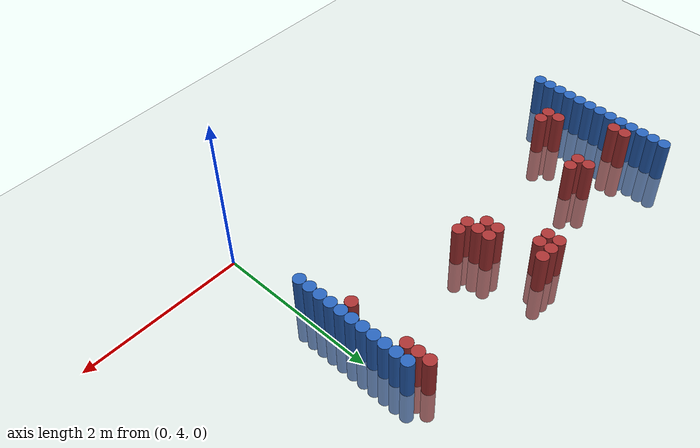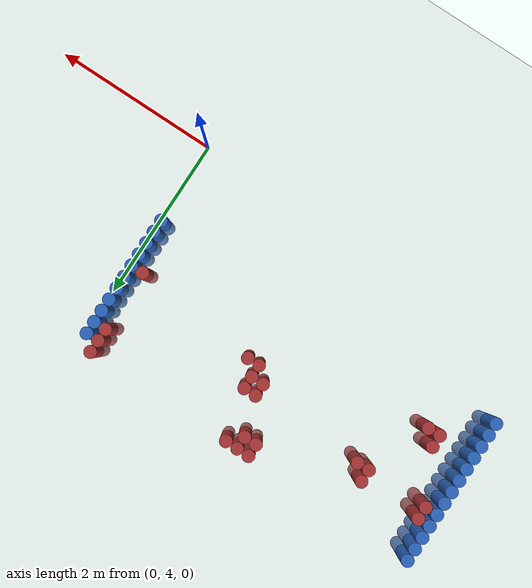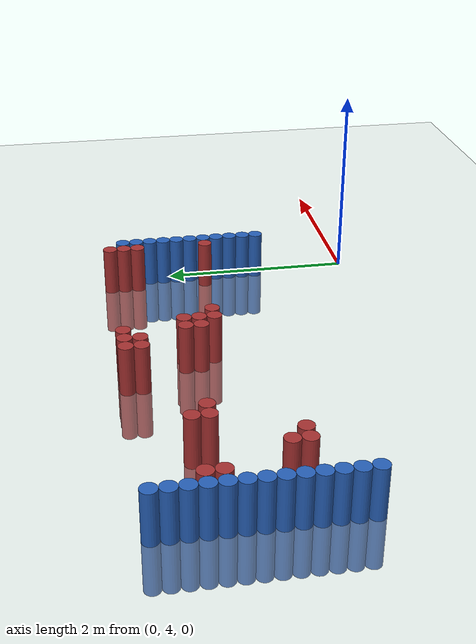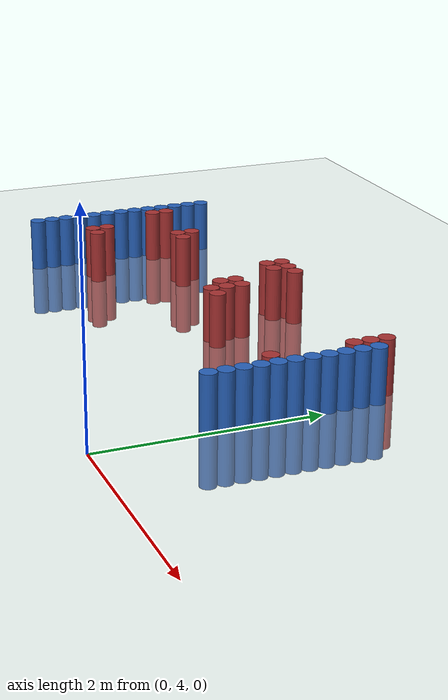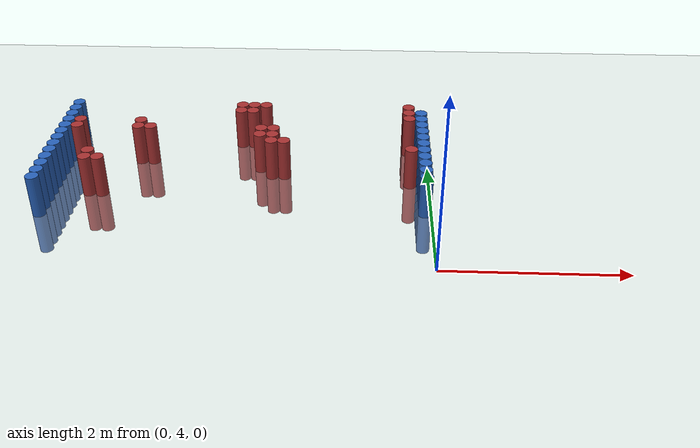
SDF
<sdf version="1.6">
 <world name="default">
  <model name="ground_plane">
   <static>1</static>
   <link name="link">
    <collision name="collision">
     <geometry><plane><normal>0 0 1</normal><size>100 100</size></plane></geometry>
     <surface><friction><ode><mu>100</mu><mu2>50</mu2></ode></friction></surface>
    </collision>
    <visual name="visual">
     <cast_shadows>0</cast_shadows>
     <geometry><plane><normal>0 0 1</normal><size>100 100</size></plane></geometry>
     <material>
      <script><uri>file://media/materials/scripts/gazebo.material</uri><name>Gazebo/Grey</name></script>
     </material>
    </visual>
   </link>
  </model>
  <model name="unit_cylinder_93">
   <static>1</static>
   <pose>-4.425000 4.875000 0.000000 0.000000 0.000000 0.000000</pose>
   <link name="link">
    <inertial>
     <mass>1</mass>
     <inertia><ixx>0.145833</ixx><ixy>0</ixy><ixz>0</ixz><iyy>0.145833</iyy><iyz>0</iyz><izz>0.125</izz></inertia>
    </inertial>
    <collision name="collision">
     <geometry><cylinder><radius>0.075000</radius><length>1</length></cylinder></geometry>
    </collision>
    <visual name="visual">
     <geometry><cylinder><radius>0.075000</radius><length>1</length></cylinder></geometry>
     <material>
      <ambient>0.152000 0.379000 0.720000 1</ambient>
      <diffuse>0.152000 0.379000 0.720000 1</diffuse>
     </material>
     <material>
      <script><name>Gazebo/Grey</name><uri>file://media/materials/scripts/gazebo.material</uri></script>
     </material>
    </visual>
   </link>
  </model>
  <model name="unit_cylinder_94">
   <static>1</static>
   <pose>-0.075000 5.025000 0.000000 0.000000 0.000000 0.000000</pose>
   <link name="link">
    <inertial>
     <mass>1</mass>
     <inertia><ixx>0.145833</ixx><ixy>0</ixy><ixz>0</ixz><iyy>0.145833</iyy><iyz>0</iyz><izz>0.125</izz></inertia>
    </inertial>
    <collision name="collision">
     <geometry><cylinder><radius>0.075000</radius><length>1</length></cylinder></geometry>
    </collision>
    <visual name="visual">
     <geometry><cylinder><radius>0.075000</radius><length>1</length></cylinder></geometry>
     <material>
      <ambient>0.152000 0.379000 0.720000 1</ambient>
      <diffuse>0.152000 0.379000 0.720000 1</diffuse>
     </material>
     <material>
      <script><name>Gazebo/Grey</name><uri>file://media/materials/scripts/gazebo.material</uri></script>
     </material>
    </visual>
   </link>
  </model>
  <model name="unit_cylinder_95">
   <static>1</static>
   <pose>-4.425000 5.025000 0.000000 0.000000 0.000000 0.000000</pose>
   <link name="link">
    <inertial>
     <mass>1</mass>
     <inertia><ixx>0.145833</ixx><ixy>0</ixy><ixz>0</ixz><iyy>0.145833</iyy><iyz>0</iyz><izz>0.125</izz></inertia>
    </inertial>
    <collision name="collision">
     <geometry><cylinder><radius>0.075000</radius><length>1</length></cylinder></geometry>
    </collision>
    <visual name="visual">
     <geometry><cylinder><radius>0.075000</radius><length>1</length></cylinder></geometry>
     <material>
      <ambient>0.152000 0.379000 0.720000 1</ambient>
      <diffuse>0.152000 0.379000 0.720000 1</diffuse>
     </material>
     <material>
      <script><name>Gazebo/Grey</name><uri>file://media/materials/scripts/gazebo.material</uri></script>
     </material>
    </visual>
   </link>
  </model>
  <model name="unit_cylinder_96">
   <static>1</static>
   <pose>-4.425000 5.175000 0.000000 0.000000 0.000000 0.000000</pose>
   <link name="link">
    <inertial>
     <mass>1</mass>
     <inertia><ixx>0.145833</ixx><ixy>0</ixy><ixz>0</ixz><iyy>0.145833</iyy><iyz>0</iyz><izz>0.125</izz></inertia>
    </inertial>
    <collision name="collision">
     <geometry><cylinder><radius>0.075000</radius><length>1</length></cylinder></geometry>
    </collision>
    <visual name="visual">
     <geometry><cylinder><radius>0.075000</radius><length>1</length></cylinder></geometry>
     <material>
      <ambient>0.152000 0.379000 0.720000 1</ambient>
      <diffuse>0.152000 0.379000 0.720000 1</diffuse>
     </material>
     <material>
      <script><name>Gazebo/Grey</name><uri>file://media/materials/scripts/gazebo.material</uri></script>
     </material>
    </visual>
   </link>
  </model>
  <model name="unit_cylinder_97">
   <static>1</static>
   <pose>-4.425000 5.325000 0.000000 0.000000 0.000000 0.000000</pose>
   <link name="link">
    <inertial>
     <mass>1</mass>
     <inertia><ixx>0.145833</ixx><ixy>0</ixy><ixz>0</ixz><iyy>0.145833</iyy><iyz>0</iyz><izz>0.125</izz></inertia>
    </inertial>
    <collision name="collision">
     <geometry><cylinder><radius>0.075000</radius><length>1</length></cylinder></geometry>
    </collision>
    <visual name="visual">
     <geometry><cylinder><radius>0.075000</radius><length>1</length></cylinder></geometry>
     <material>
      <ambient>0.152000 0.379000 0.720000 1</ambient>
      <diffuse>0.152000 0.379000 0.720000 1</diffuse>
     </material>
     <material>
      <script><name>Gazebo/Grey</name><uri>file://media/materials/scripts/gazebo.material</uri></script>
     </material>
    </visual>
   </link>
  </model>
  <model name="unit_cylinder_98">
   <static>1</static>
   <pose>-4.425000 5.475000 0.000000 0.000000 0.000000 0.000000</pose>
   <link name="link">
    <inertial>
     <mass>1</mass>
     <inertia><ixx>0.145833</ixx><ixy>0</ixy><ixz>0</ixz><iyy>0.145833</iyy><iyz>0</iyz><izz>0.125</izz></inertia>
    </inertial>
    <collision name="collision">
     <geometry><cylinder><radius>0.075000</radius><length>1</length></cylinder></geometry>
    </collision>
    <visual name="visual">
     <geometry><cylinder><radius>0.075000</radius><length>1</length></cylinder></geometry>
     <material>
      <ambient>0.152000 0.379000 0.720000 1</ambient>
      <diffuse>0.152000 0.379000 0.720000 1</diffuse>
     </material>
     <material>
      <script><name>Gazebo/Grey</name><uri>file://media/materials/scripts/gazebo.material</uri></script>
     </material>
    </visual>
   </link>
  </model>
  <model name="unit_cylinder_99">
   <static>1</static>
   <pose>-4.425000 5.625000 0.000000 0.000000 0.000000 0.000000</pose>
   <link name="link">
    <inertial>
     <mass>1</mass>
     <inertia><ixx>0.145833</ixx><ixy>0</ixy><ixz>0</ixz><iyy>0.145833</iyy><iyz>0</iyz><izz>0.125</izz></inertia>
    </inertial>
    <collision name="collision">
     <geometry><cylinder><radius>0.075000</radius><length>1</length></cylinder></geometry>
    </collision>
    <visual name="visual">
     <geometry><cylinder><radius>0.075000</radius><length>1</length></cylinder></geometry>
     <material>
      <ambient>0.152000 0.379000 0.720000 1</ambient>
      <diffuse>0.152000 0.379000 0.720000 1</diffuse>
     </material>
     <material>
      <script><name>Gazebo/Grey</name><uri>file://media/materials/scripts/gazebo.material</uri></script>
     </material>
    </visual>
   </link>
  </model>
  <model name="unit_cylinder_100">
   <static>1</static>
   <pose>-4.425000 5.775000 0.000000 0.000000 0.000000 0.000000</pose>
   <link name="link">
    <inertial>
     <mass>1</mass>
     <inertia><ixx>0.145833</ixx><ixy>0</ixy><ixz>0</ixz><iyy>0.145833</iyy><iyz>0</iyz><izz>0.125</izz></inertia>
    </inertial>
    <collision name="collision">
     <geometry><cylinder><radius>0.075000</radius><length>1</length></cylinder></geometry>
    </collision>
    <visual name="visual">
     <geometry><cylinder><radius>0.075000</radius><length>1</length></cylinder></geometry>
     <material>
      <ambient>0.152000 0.379000 0.720000 1</ambient>
      <diffuse>0.152000 0.379000 0.720000 1</diffuse>
     </material>
     <material>
      <script><name>Gazebo/Grey</name><uri>file://media/materials/scripts/gazebo.material</uri></script>
     </material>
    </visual>
   </link>
  </model>
  <model name="unit_cylinder_101">
   <static>1</static>
   <pose>-4.425000 5.925000 0.000000 0.000000 0.000000 0.000000</pose>
   <link name="link">
    <inertial>
     <mass>1</mass>
     <inertia><ixx>0.145833</ixx><ixy>0</ixy><ixz>0</ixz><iyy>0.145833</iyy><iyz>0</iyz><izz>0.125</izz></inertia>
    </inertial>
    <collision name="collision">
     <geometry><cylinder><radius>0.075000</radius><length>1</length></cylinder></geometry>
    </collision>
    <visual name="visual">
     <geometry><cylinder><radius>0.075000</radius><length>1</length></cylinder></geometry>
     <material>
      <ambient>0.152000 0.379000 0.720000 1</ambient>
      <diffuse>0.152000 0.379000 0.720000 1</diffuse>
     </material>
     <material>
      <script><name>Gazebo/Grey</name><uri>file://media/materials/scripts/gazebo.material</uri></script>
     </material>
    </visual>
   </link>
  </model>
  <model name="unit_cylinder_102">
   <static>1</static>
   <pose>-4.425000 6.075000 0.000000 0.000000 0.000000 0.000000</pose>
   <link name="link">
    <inertial>
     <mass>1</mass>
     <inertia><ixx>0.145833</ixx><ixy>0</ixy><ixz>0</ixz><iyy>0.145833</iyy><iyz>0</iyz><izz>0.125</izz></inertia>
    </inertial>
    <collision name="collision">
     <geometry><cylinder><radius>0.075000</radius><length>1</length></cylinder></geometry>
    </collision>
    <visual name="visual">
     <geometry><cylinder><radius>0.075000</radius><length>1</length></cylinder></geometry>
     <material>
      <ambient>0.152000 0.379000 0.720000 1</ambient>
      <diffuse>0.152000 0.379000 0.720000 1</diffuse>
     </material>
     <material>
      <script><name>Gazebo/Grey</name><uri>file://media/materials/scripts/gazebo.material</uri></script>
     </material>
    </visual>
   </link>
  </model>
  <model name="unit_cylinder_103">
   <static>1</static>
   <pose>-4.425000 6.225000 0.000000 0.000000 0.000000 0.000000</pose>
   <link name="link">
    <inertial>
     <mass>1</mass>
     <inertia><ixx>0.145833</ixx><ixy>0</ixy><ixz>0</ixz><iyy>0.145833</iyy><iyz>0</iyz><izz>0.125</izz></inertia>
    </inertial>
    <collision name="collision">
     <geometry><cylinder><radius>0.075000</radius><length>1</length></cylinder></geometry>
    </collision>
    <visual name="visual">
     <geometry><cylinder><radius>0.075000</radius><length>1</length></cylinder></geometry>
     <material>
      <ambient>0.152000 0.379000 0.720000 1</ambient>
      <diffuse>0.152000 0.379000 0.720000 1</diffuse>
     </material>
     <material>
      <script><name>Gazebo/Grey</name><uri>file://media/materials/scripts/gazebo.material</uri></script>
     </material>
    </visual>
   </link>
  </model>
  <model name="unit_cylinder_104">
   <static>1</static>
   <pose>-4.425000 6.375000 0.000000 0.000000 0.000000 0.000000</pose>
   <link name="link">
    <inertial>
     <mass>1</mass>
     <inertia><ixx>0.145833</ixx><ixy>0</ixy><ixz>0</ixz><iyy>0.145833</iyy><iyz>0</iyz><izz>0.125</izz></inertia>
    </inertial>
    <collision name="collision">
     <geometry><cylinder><radius>0.075000</radius><length>1</length></cylinder></geometry>
    </collision>
    <visual name="visual">
     <geometry><cylinder><radius>0.075000</radius><length>1</length></cylinder></geometry>
     <material>
      <ambient>0.152000 0.379000 0.720000 1</ambient>
      <diffuse>0.152000 0.379000 0.720000 1</diffuse>
     </material>
     <material>
      <script><name>Gazebo/Grey</name><uri>file://media/materials/scripts/gazebo.material</uri></script>
     </material>
    </visual>
   </link>
  </model>
  <model name="unit_cylinder_105">
   <static>1</static>
   <pose>-4.425000 6.525000 0.000000 0.000000 0.000000 0.000000</pose>
   <link name="link">
    <inertial>
     <mass>1</mass>
     <inertia><ixx>0.145833</ixx><ixy>0</ixy><ixz>0</ixz><iyy>0.145833</iyy><iyz>0</iyz><izz>0.125</izz></inertia>
    </inertial>
    <collision name="collision">
     <geometry><cylinder><radius>0.075000</radius><length>1</length></cylinder></geometry>
    </collision>
    <visual name="visual">
     <geometry><cylinder><radius>0.075000</radius><length>1</length></cylinder></geometry>
     <material>
      <ambient>0.152000 0.379000 0.720000 1</ambient>
      <diffuse>0.152000 0.379000 0.720000 1</diffuse>
     </material>
     <material>
      <script><name>Gazebo/Grey</name><uri>file://media/materials/scripts/gazebo.material</uri></script>
     </material>
    </visual>
   </link>
  </model>
  <model name="unit_cylinder_106">
   <static>1</static>
   <pose>-4.425000 6.675000 0.000000 0.000000 0.000000 0.000000</pose>
   <link name="link">
    <inertial>
     <mass>1</mass>
     <inertia><ixx>0.145833</ixx><ixy>0</ixy><ixz>0</ixz><iyy>0.145833</iyy><iyz>0</iyz><izz>0.125</izz></inertia>
    </inertial>
    <collision name="collision">
     <geometry><cylinder><radius>0.075000</radius><length>1</length></cylinder></geometry>
    </collision>
    <visual name="visual">
     <geometry><cylinder><radius>0.075000</radius><length>1</length></cylinder></geometry>
     <material>
      <ambient>0.152000 0.379000 0.720000 1</ambient>
      <diffuse>0.152000 0.379000 0.720000 1</diffuse>
     </material>
     <material>
      <script><name>Gazebo/Grey</name><uri>file://media/materials/scripts/gazebo.material</uri></script>
     </material>
    </visual>
   </link>
  </model>
  <model name="unit_cylinder_126">
   <static>1</static>
   <pose>-4.275000 6.075000 0.000000 0.000000 0.000000 0.000000</pose>
   <link name="link">
    <inertial>
     <mass>1</mass>
     <inertia><ixx>0.145833</ixx><ixy>0</ixy><ixz>0</ixz><iyy>0.145833</iyy><iyz>0</iyz><izz>0.125</izz></inertia>
    </inertial>
    <collision name="collision">
     <geometry><cylinder><radius>0.075000</radius><length>1</length></cylinder></geometry>
    </collision>
    <visual name="visual">
     <geometry><cylinder><radius>0.075000</radius><length>1</length></cylinder></geometry>
     <material>
      <ambient>0.648000 0.192000 0.192000 1</ambient>
      <diffuse>0.648000 0.192000 0.192000 1</diffuse>
     </material>
     <material>
      <script><name>Gazebo/Grey</name><uri>file://media/materials/scripts/gazebo.material</uri></script>
     </material>
    </visual>
   </link>
  </model>
  <model name="unit_cylinder_127">
   <static>1</static>
   <pose>-4.275000 6.225000 0.000000 0.000000 0.000000 0.000000</pose>
   <link name="link">
    <inertial>
     <mass>1</mass>
     <inertia><ixx>0.145833</ixx><ixy>0</ixy><ixz>0</ixz><iyy>0.145833</iyy><iyz>0</iyz><izz>0.125</izz></inertia>
    </inertial>
    <collision name="collision">
     <geometry><cylinder><radius>0.075000</radius><length>1</length></cylinder></geometry>
    </collision>
    <visual name="visual">
     <geometry><cylinder><radius>0.075000</radius><length>1</length></cylinder></geometry>
     <material>
      <ambient>0.648000 0.192000 0.192000 1</ambient>
      <diffuse>0.648000 0.192000 0.192000 1</diffuse>
     </material>
     <material>
      <script><name>Gazebo/Grey</name><uri>file://media/materials/scripts/gazebo.material</uri></script>
     </material>
    </visual>
   </link>
  </model>
  <model name="unit_cylinder_142">
   <static>1</static>
   <pose>-3.975000 5.325000 0.000000 0.000000 0.000000 0.000000</pose>
   <link name="link">
    <inertial>
     <mass>1</mass>
     <inertia><ixx>0.145833</ixx><ixy>0</ixy><ixz>0</ixz><iyy>0.145833</iyy><iyz>0</iyz><izz>0.125</izz></inertia>
    </inertial>
    <collision name="collision">
     <geometry><cylinder><radius>0.075000</radius><length>1</length></cylinder></geometry>
    </collision>
    <visual name="visual">
     <geometry><cylinder><radius>0.075000</radius><length>1</length></cylinder></geometry>
     <material>
      <ambient>0.648000 0.192000 0.192000 1</ambient>
      <diffuse>0.648000 0.192000 0.192000 1</diffuse>
     </material>
     <material>
      <script><name>Gazebo/Grey</name><uri>file://media/materials/scripts/gazebo.material</uri></script>
     </material>
    </visual>
   </link>
  </model>
  <model name="unit_cylinder_143">
   <static>1</static>
   <pose>-3.975000 5.475000 0.000000 0.000000 0.000000 0.000000</pose>
   <link name="link">
    <inertial>
     <mass>1</mass>
     <inertia><ixx>0.145833</ixx><ixy>0</ixy><ixz>0</ixz><iyy>0.145833</iyy><iyz>0</iyz><izz>0.125</izz></inertia>
    </inertial>
    <collision name="collision">
     <geometry><cylinder><radius>0.075000</radius><length>1</length></cylinder></geometry>
    </collision>
    <visual name="visual">
     <geometry><cylinder><radius>0.075000</radius><length>1</length></cylinder></geometry>
     <material>
      <ambient>0.648000 0.192000 0.192000 1</ambient>
      <diffuse>0.648000 0.192000 0.192000 1</diffuse>
     </material>
     <material>
      <script><name>Gazebo/Grey</name><uri>file://media/materials/scripts/gazebo.material</uri></script>
     </material>
    </visual>
   </link>
  </model>
  <model name="unit_cylinder_146">
   <static>1</static>
   <pose>-3.825000 5.325000 0.000000 0.000000 0.000000 0.000000</pose>
   <link name="link">
    <inertial>
     <mass>1</mass>
     <inertia><ixx>0.145833</ixx><ixy>0</ixy><ixz>0</ixz><iyy>0.145833</iyy><iyz>0</iyz><izz>0.125</izz></inertia>
    </inertial>
    <collision name="collision">
     <geometry><cylinder><radius>0.075000</radius><length>1</length></cylinder></geometry>
    </collision>
    <visual name="visual">
     <geometry><cylinder><radius>0.075000</radius><length>1</length></cylinder></geometry>
     <material>
      <ambient>0.648000 0.192000 0.192000 1</ambient>
      <diffuse>0.648000 0.192000 0.192000 1</diffuse>
     </material>
     <material>
      <script><name>Gazebo/Grey</name><uri>file://media/materials/scripts/gazebo.material</uri></script>
     </material>
    </visual>
   </link>
  </model>
  <model name="unit_cylinder_147">
   <static>1</static>
   <pose>-3.525000 6.075000 0.000000 0.000000 0.000000 0.000000</pose>
   <link name="link">
    <inertial>
     <mass>1</mass>
     <inertia><ixx>0.145833</ixx><ixy>0</ixy><ixz>0</ixz><iyy>0.145833</iyy><iyz>0</iyz><izz>0.125</izz></inertia>
    </inertial>
    <collision name="collision">
     <geometry><cylinder><radius>0.075000</radius><length>1</length></cylinder></geometry>
    </collision>
    <visual name="visual">
     <geometry><cylinder><radius>0.075000</radius><length>1</length></cylinder></geometry>
     <material>
      <ambient>0.648000 0.192000 0.192000 1</ambient>
      <diffuse>0.648000 0.192000 0.192000 1</diffuse>
     </material>
     <material>
      <script><name>Gazebo/Grey</name><uri>file://media/materials/scripts/gazebo.material</uri></script>
     </material>
    </visual>
   </link>
  </model>
  <model name="unit_cylinder_148">
   <static>1</static>
   <pose>-3.525000 6.225000 0.000000 0.000000 0.000000 0.000000</pose>
   <link name="link">
    <inertial>
     <mass>1</mass>
     <inertia><ixx>0.145833</ixx><ixy>0</ixy><ixz>0</ixz><iyy>0.145833</iyy><iyz>0</iyz><izz>0.125</izz></inertia>
    </inertial>
    <collision name="collision">
     <geometry><cylinder><radius>0.075000</radius><length>1</length></cylinder></geometry>
    </collision>
    <visual name="visual">
     <geometry><cylinder><radius>0.075000</radius><length>1</length></cylinder></geometry>
     <material>
      <ambient>0.648000 0.192000 0.192000 1</ambient>
      <diffuse>0.648000 0.192000 0.192000 1</diffuse>
     </material>
     <material>
      <script><name>Gazebo/Grey</name><uri>file://media/materials/scripts/gazebo.material</uri></script>
     </material>
    </visual>
   </link>
  </model>
  <model name="unit_cylinder_149">
   <static>1</static>
   <pose>-3.375000 6.075000 0.000000 0.000000 0.000000 0.000000</pose>
   <link name="link">
    <inertial>
     <mass>1</mass>
     <inertia><ixx>0.145833</ixx><ixy>0</ixy><ixz>0</ixz><iyy>0.145833</iyy><iyz>0</iyz><izz>0.125</izz></inertia>
    </inertial>
    <collision name="collision">
     <geometry><cylinder><radius>0.075000</radius><length>1</length></cylinder></geometry>
    </collision>
    <visual name="visual">
     <geometry><cylinder><radius>0.075000</radius><length>1</length></cylinder></geometry>
     <material>
      <ambient>0.648000 0.192000 0.192000 1</ambient>
      <diffuse>0.648000 0.192000 0.192000 1</diffuse>
     </material>
     <material>
      <script><name>Gazebo/Grey</name><uri>file://media/materials/scripts/gazebo.material</uri></script>
     </material>
    </visual>
   </link>
  </model>
  <model name="unit_cylinder_156">
   <static>1</static>
   <pose>-2.325000 6.525000 0.000000 0.000000 0.000000 0.000000</pose>
   <link name="link">
    <inertial>
     <mass>1</mass>
     <inertia><ixx>0.145833</ixx><ixy>0</ixy><ixz>0</ixz><iyy>0.145833</iyy><iyz>0</iyz><izz>0.125</izz></inertia>
    </inertial>
    <collision name="collision">
     <geometry><cylinder><radius>0.075000</radius><length>1</length></cylinder></geometry>
    </collision>
    <visual name="visual">
     <geometry><cylinder><radius>0.075000</radius><length>1</length></cylinder></geometry>
     <material>
      <ambient>0.648000 0.192000 0.192000 1</ambient>
      <diffuse>0.648000 0.192000 0.192000 1</diffuse>
     </material>
     <material>
      <script><name>Gazebo/Grey</name><uri>file://media/materials/scripts/gazebo.material</uri></script>
     </material>
    </visual>
   </link>
  </model>
  <model name="unit_cylinder_157">
   <static>1</static>
   <pose>-2.325000 6.675000 0.000000 0.000000 0.000000 0.000000</pose>
   <link name="link">
    <inertial>
     <mass>1</mass>
     <inertia><ixx>0.145833</ixx><ixy>0</ixy><ixz>0</ixz><iyy>0.145833</iyy><iyz>0</iyz><izz>0.125</izz></inertia>
    </inertial>
    <collision name="collision">
     <geometry><cylinder><radius>0.075000</radius><length>1</length></cylinder></geometry>
    </collision>
    <visual name="visual">
     <geometry><cylinder><radius>0.075000</radius><length>1</length></cylinder></geometry>
     <material>
      <ambient>0.648000 0.192000 0.192000 1</ambient>
      <diffuse>0.648000 0.192000 0.192000 1</diffuse>
     </material>
     <material>
      <script><name>Gazebo/Grey</name><uri>file://media/materials/scripts/gazebo.material</uri></script>
     </material>
    </visual>
   </link>
  </model>
  <model name="unit_cylinder_159">
   <static>1</static>
   <pose>-2.175000 6.525000 0.000000 0.000000 0.000000 0.000000</pose>
   <link name="link">
    <inertial>
     <mass>1</mass>
     <inertia><ixx>0.145833</ixx><ixy>0</ixy><ixz>0</ixz><iyy>0.145833</iyy><iyz>0</iyz><izz>0.125</izz></inertia>
    </inertial>
    <collision name="collision">
     <geometry><cylinder><radius>0.075000</radius><length>1</length></cylinder></geometry>
    </collision>
    <visual name="visual">
     <geometry><cylinder><radius>0.075000</radius><length>1</length></cylinder></geometry>
     <material>
      <ambient>0.648000 0.192000 0.192000 1</ambient>
      <diffuse>0.648000 0.192000 0.192000 1</diffuse>
     </material>
     <material>
      <script><name>Gazebo/Grey</name><uri>file://media/materials/scripts/gazebo.material</uri></script>
     </material>
    </visual>
   </link>
  </model>
  <model name="unit_cylinder_160">
   <static>1</static>
   <pose>-2.175000 6.675000 0.000000 0.000000 0.000000 0.000000</pose>
   <link name="link">
    <inertial>
     <mass>1</mass>
     <inertia><ixx>0.145833</ixx><ixy>0</ixy><ixz>0</ixz><iyy>0.145833</iyy><iyz>0</iyz><izz>0.125</izz></inertia>
    </inertial>
    <collision name="collision">
     <geometry><cylinder><radius>0.075000</radius><length>1</length></cylinder></geometry>
    </collision>
    <visual name="visual">
     <geometry><cylinder><radius>0.075000</radius><length>1</length></cylinder></geometry>
     <material>
      <ambient>0.648000 0.192000 0.192000 1</ambient>
      <diffuse>0.648000 0.192000 0.192000 1</diffuse>
     </material>
     <material>
      <script><name>Gazebo/Grey</name><uri>file://media/materials/scripts/gazebo.material</uri></script>
     </material>
    </visual>
   </link>
  </model>
  <model name="unit_cylinder_166">
   <static>1</static>
   <pose>-2.025000 5.925000 0.000000 0.000000 0.000000 0.000000</pose>
   <link name="link">
    <inertial>
     <mass>1</mass>
     <inertia><ixx>0.145833</ixx><ixy>0</ixy><ixz>0</ixz><iyy>0.145833</iyy><iyz>0</iyz><izz>0.125</izz></inertia>
    </inertial>
    <collision name="collision">
     <geometry><cylinder><radius>0.075000</radius><length>1</length></cylinder></geometry>
    </collision>
    <visual name="visual">
     <geometry><cylinder><radius>0.075000</radius><length>1</length></cylinder></geometry>
     <material>
      <ambient>0.648000 0.192000 0.192000 1</ambient>
      <diffuse>0.648000 0.192000 0.192000 1</diffuse>
     </material>
     <material>
      <script><name>Gazebo/Grey</name><uri>file://media/materials/scripts/gazebo.material</uri></script>
     </material>
    </visual>
   </link>
  </model>
  <model name="unit_cylinder_167">
   <static>1</static>
   <pose>-2.025000 6.075000 0.000000 0.000000 0.000000 0.000000</pose>
   <link name="link">
    <inertial>
     <mass>1</mass>
     <inertia><ixx>0.145833</ixx><ixy>0</ixy><ixz>0</ixz><iyy>0.145833</iyy><iyz>0</iyz><izz>0.125</izz></inertia>
    </inertial>
    <collision name="collision">
     <geometry><cylinder><radius>0.075000</radius><length>1</length></cylinder></geometry>
    </collision>
    <visual name="visual">
     <geometry><cylinder><radius>0.075000</radius><length>1</length></cylinder></geometry>
     <material>
      <ambient>0.648000 0.192000 0.192000 1</ambient>
      <diffuse>0.648000 0.192000 0.192000 1</diffuse>
     </material>
     <material>
      <script><name>Gazebo/Grey</name><uri>file://media/materials/scripts/gazebo.material</uri></script>
     </material>
    </visual>
   </link>
  </model>
  <model name="unit_cylinder_168">
   <static>1</static>
   <pose>-2.025000 6.675000 0.000000 0.000000 0.000000 0.000000</pose>
   <link name="link">
    <inertial>
     <mass>1</mass>
     <inertia><ixx>0.145833</ixx><ixy>0</ixy><ixz>0</ixz><iyy>0.145833</iyy><iyz>0</iyz><izz>0.125</izz></inertia>
    </inertial>
    <collision name="collision">
     <geometry><cylinder><radius>0.075000</radius><length>1</length></cylinder></geometry>
    </collision>
    <visual name="visual">
     <geometry><cylinder><radius>0.075000</radius><length>1</length></cylinder></geometry>
     <material>
      <ambient>0.648000 0.192000 0.192000 1</ambient>
      <diffuse>0.648000 0.192000 0.192000 1</diffuse>
     </material>
     <material>
      <script><name>Gazebo/Grey</name><uri>file://media/materials/scripts/gazebo.material</uri></script>
     </material>
    </visual>
   </link>
  </model>
  <model name="unit_cylinder_173">
   <static>1</static>
   <pose>-1.875000 5.775000 0.000000 0.000000 0.000000 0.000000</pose>
   <link name="link">
    <inertial>
     <mass>1</mass>
     <inertia><ixx>0.145833</ixx><ixy>0</ixy><ixz>0</ixz><iyy>0.145833</iyy><iyz>0</iyz><izz>0.125</izz></inertia>
    </inertial>
    <collision name="collision">
     <geometry><cylinder><radius>0.075000</radius><length>1</length></cylinder></geometry>
    </collision>
    <visual name="visual">
     <geometry><cylinder><radius>0.075000</radius><length>1</length></cylinder></geometry>
     <material>
      <ambient>0.648000 0.192000 0.192000 1</ambient>
      <diffuse>0.648000 0.192000 0.192000 1</diffuse>
     </material>
     <material>
      <script><name>Gazebo/Grey</name><uri>file://media/materials/scripts/gazebo.material</uri></script>
     </material>
    </visual>
   </link>
  </model>
  <model name="unit_cylinder_174">
   <static>1</static>
   <pose>-1.875000 5.925000 0.000000 0.000000 0.000000 0.000000</pose>
   <link name="link">
    <inertial>
     <mass>1</mass>
     <inertia><ixx>0.145833</ixx><ixy>0</ixy><ixz>0</ixz><iyy>0.145833</iyy><iyz>0</iyz><izz>0.125</izz></inertia>
    </inertial>
    <collision name="collision">
     <geometry><cylinder><radius>0.075000</radius><length>1</length></cylinder></geometry>
    </collision>
    <visual name="visual">
     <geometry><cylinder><radius>0.075000</radius><length>1</length></cylinder></geometry>
     <material>
      <ambient>0.648000 0.192000 0.192000 1</ambient>
      <diffuse>0.648000 0.192000 0.192000 1</diffuse>
     </material>
     <material>
      <script><name>Gazebo/Grey</name><uri>file://media/materials/scripts/gazebo.material</uri></script>
     </material>
    </visual>
   </link>
  </model>
  <model name="unit_cylinder_175">
   <static>1</static>
   <pose>-1.875000 6.075000 0.000000 0.000000 0.000000 0.000000</pose>
   <link name="link">
    <inertial>
     <mass>1</mass>
     <inertia><ixx>0.145833</ixx><ixy>0</ixy><ixz>0</ixz><iyy>0.145833</iyy><iyz>0</iyz><izz>0.125</izz></inertia>
    </inertial>
    <collision name="collision">
     <geometry><cylinder><radius>0.075000</radius><length>1</length></cylinder></geometry>
    </collision>
    <visual name="visual">
     <geometry><cylinder><radius>0.075000</radius><length>1</length></cylinder></geometry>
     <material>
      <ambient>0.648000 0.192000 0.192000 1</ambient>
      <diffuse>0.648000 0.192000 0.192000 1</diffuse>
     </material>
     <material>
      <script><name>Gazebo/Grey</name><uri>file://media/materials/scripts/gazebo.material</uri></script>
     </material>
    </visual>
   </link>
  </model>
  <model name="unit_cylinder_178">
   <static>1</static>
   <pose>-1.725000 5.775000 0.000000 0.000000 0.000000 0.000000</pose>
   <link name="link">
    <inertial>
     <mass>1</mass>
     <inertia><ixx>0.145833</ixx><ixy>0</ixy><ixz>0</ixz><iyy>0.145833</iyy><iyz>0</iyz><izz>0.125</izz></inertia>
    </inertial>
    <collision name="collision">
     <geometry><cylinder><radius>0.075000</radius><length>1</length></cylinder></geometry>
    </collision>
    <visual name="visual">
     <geometry><cylinder><radius>0.075000</radius><length>1</length></cylinder></geometry>
     <material>
      <ambient>0.648000 0.192000 0.192000 1</ambient>
      <diffuse>0.648000 0.192000 0.192000 1</diffuse>
     </material>
     <material>
      <script><name>Gazebo/Grey</name><uri>file://media/materials/scripts/gazebo.material</uri></script>
     </material>
    </visual>
   </link>
  </model>
  <model name="unit_cylinder_195">
   <static>1</static>
   <pose>-0.225000 5.625000 0.000000 0.000000 0.000000 0.000000</pose>
   <link name="link">
    <inertial>
     <mass>1</mass>
     <inertia><ixx>0.145833</ixx><ixy>0</ixy><ixz>0</ixz><iyy>0.145833</iyy><iyz>0</iyz><izz>0.125</izz></inertia>
    </inertial>
    <collision name="collision">
     <geometry><cylinder><radius>0.075000</radius><length>1</length></cylinder></geometry>
    </collision>
    <visual name="visual">
     <geometry><cylinder><radius>0.075000</radius><length>1</length></cylinder></geometry>
     <material>
      <ambient>0.648000 0.192000 0.192000 1</ambient>
      <diffuse>0.648000 0.192000 0.192000 1</diffuse>
     </material>
     <material>
      <script><name>Gazebo/Grey</name><uri>file://media/materials/scripts/gazebo.material</uri></script>
     </material>
    </visual>
   </link>
  </model>
  <model name="unit_cylinder_196">
   <static>1</static>
   <pose>-0.225000 6.375000 0.000000 0.000000 0.000000 0.000000</pose>
   <link name="link">
    <inertial>
     <mass>1</mass>
     <inertia><ixx>0.145833</ixx><ixy>0</ixy><ixz>0</ixz><iyy>0.145833</iyy><iyz>0</iyz><izz>0.125</izz></inertia>
    </inertial>
    <collision name="collision">
     <geometry><cylinder><radius>0.075000</radius><length>1</length></cylinder></geometry>
    </collision>
    <visual name="visual">
     <geometry><cylinder><radius>0.075000</radius><length>1</length></cylinder></geometry>
     <material>
      <ambient>0.648000 0.192000 0.192000 1</ambient>
      <diffuse>0.648000 0.192000 0.192000 1</diffuse>
     </material>
     <material>
      <script><name>Gazebo/Grey</name><uri>file://media/materials/scripts/gazebo.material</uri></script>
     </material>
    </visual>
   </link>
  </model>
  <model name="unit_cylinder_197">
   <static>1</static>
   <pose>-0.225000 6.525000 0.000000 0.000000 0.000000 0.000000</pose>
   <link name="link">
    <inertial>
     <mass>1</mass>
     <inertia><ixx>0.145833</ixx><ixy>0</ixy><ixz>0</ixz><iyy>0.145833</iyy><iyz>0</iyz><izz>0.125</izz></inertia>
    </inertial>
    <collision name="collision">
     <geometry><cylinder><radius>0.075000</radius><length>1</length></cylinder></geometry>
    </collision>
    <visual name="visual">
     <geometry><cylinder><radius>0.075000</radius><length>1</length></cylinder></geometry>
     <material>
      <ambient>0.648000 0.192000 0.192000 1</ambient>
      <diffuse>0.648000 0.192000 0.192000 1</diffuse>
     </material>
     <material>
      <script><name>Gazebo/Grey</name><uri>file://media/materials/scripts/gazebo.material</uri></script>
     </material>
    </visual>
   </link>
  </model>
  <model name="unit_cylinder_198">
   <static>1</static>
   <pose>-0.225000 6.675000 0.000000 0.000000 0.000000 0.000000</pose>
   <link name="link">
    <inertial>
     <mass>1</mass>
     <inertia><ixx>0.145833</ixx><ixy>0</ixy><ixz>0</ixz><iyy>0.145833</iyy><iyz>0</iyz><izz>0.125</izz></inertia>
    </inertial>
    <collision name="collision">
     <geometry><cylinder><radius>0.075000</radius><length>1</length></cylinder></geometry>
    </collision>
    <visual name="visual">
     <geometry><cylinder><radius>0.075000</radius><length>1</length></cylinder></geometry>
     <material>
      <ambient>0.648000 0.192000 0.192000 1</ambient>
      <diffuse>0.648000 0.192000 0.192000 1</diffuse>
     </material>
     <material>
      <script><name>Gazebo/Grey</name><uri>file://media/materials/scripts/gazebo.material</uri></script>
     </material>
    </visual>
   </link>
  </model>
  <model name="unit_cylinder_204">
   <static>1</static>
   <pose>-0.075000 5.175000 0.000000 0.000000 0.000000 0.000000</pose>
   <link name="link">
    <inertial>
     <mass>1</mass>
     <inertia><ixx>0.145833</ixx><ixy>0</ixy><ixz>0</ixz><iyy>0.145833</iyy><iyz>0</iyz><izz>0.125</izz></inertia>
    </inertial>
    <collision name="collision">
     <geometry><cylinder><radius>0.075000</radius><length>1</length></cylinder></geometry>
    </collision>
    <visual name="visual">
     <geometry><cylinder><radius>0.075000</radius><length>1</length></cylinder></geometry>
     <material>
      <ambient>0.152000 0.379000 0.720000 1</ambient>
      <diffuse>0.152000 0.379000 0.720000 1</diffuse>
     </material>
     <material>
      <script><name>Gazebo/Grey</name><uri>file://media/materials/scripts/gazebo.material</uri></script>
     </material>
    </visual>
   </link>
  </model>
  <model name="unit_cylinder_205">
   <static>1</static>
   <pose>-0.075000 5.325000 0.000000 0.000000 0.000000 0.000000</pose>
   <link name="link">
    <inertial>
     <mass>1</mass>
     <inertia><ixx>0.145833</ixx><ixy>0</ixy><ixz>0</ixz><iyy>0.145833</iyy><iyz>0</iyz><izz>0.125</izz></inertia>
    </inertial>
    <collision name="collision">
     <geometry><cylinder><radius>0.075000</radius><length>1</length></cylinder></geometry>
    </collision>
    <visual name="visual">
     <geometry><cylinder><radius>0.075000</radius><length>1</length></cylinder></geometry>
     <material>
      <ambient>0.152000 0.379000 0.720000 1</ambient>
      <diffuse>0.152000 0.379000 0.720000 1</diffuse>
     </material>
     <material>
      <script><name>Gazebo/Grey</name><uri>file://media/materials/scripts/gazebo.material</uri></script>
     </material>
    </visual>
   </link>
  </model>
  <model name="unit_cylinder_206">
   <static>1</static>
   <pose>-0.075000 5.475000 0.000000 0.000000 0.000000 0.000000</pose>
   <link name="link">
    <inertial>
     <mass>1</mass>
     <inertia><ixx>0.145833</ixx><ixy>0</ixy><ixz>0</ixz><iyy>0.145833</iyy><iyz>0</iyz><izz>0.125</izz></inertia>
    </inertial>
    <collision name="collision">
     <geometry><cylinder><radius>0.075000</radius><length>1</length></cylinder></geometry>
    </collision>
    <visual name="visual">
     <geometry><cylinder><radius>0.075000</radius><length>1</length></cylinder></geometry>
     <material>
      <ambient>0.152000 0.379000 0.720000 1</ambient>
      <diffuse>0.152000 0.379000 0.720000 1</diffuse>
     </material>
     <material>
      <script><name>Gazebo/Grey</name><uri>file://media/materials/scripts/gazebo.material</uri></script>
     </material>
    </visual>
   </link>
  </model>
  <model name="unit_cylinder_207">
   <static>1</static>
   <pose>-0.075000 5.625000 0.000000 0.000000 0.000000 0.000000</pose>
   <link name="link">
    <inertial>
     <mass>1</mass>
     <inertia><ixx>0.145833</ixx><ixy>0</ixy><ixz>0</ixz><iyy>0.145833</iyy><iyz>0</iyz><izz>0.125</izz></inertia>
    </inertial>
    <collision name="collision">
     <geometry><cylinder><radius>0.075000</radius><length>1</length></cylinder></geometry>
    </collision>
    <visual name="visual">
     <geometry><cylinder><radius>0.075000</radius><length>1</length></cylinder></geometry>
     <material>
      <ambient>0.152000 0.379000 0.720000 1</ambient>
      <diffuse>0.152000 0.379000 0.720000 1</diffuse>
     </material>
     <material>
      <script><name>Gazebo/Grey</name><uri>file://media/materials/scripts/gazebo.material</uri></script>
     </material>
    </visual>
   </link>
  </model>
  <model name="unit_cylinder_208">
   <static>1</static>
   <pose>-0.075000 5.775000 0.000000 0.000000 0.000000 0.000000</pose>
   <link name="link">
    <inertial>
     <mass>1</mass>
     <inertia><ixx>0.145833</ixx><ixy>0</ixy><ixz>0</ixz><iyy>0.145833</iyy><iyz>0</iyz><izz>0.125</izz></inertia>
    </inertial>
    <collision name="collision">
     <geometry><cylinder><radius>0.075000</radius><length>1</length></cylinder></geometry>
    </collision>
    <visual name="visual">
     <geometry><cylinder><radius>0.075000</radius><length>1</length></cylinder></geometry>
     <material>
      <ambient>0.152000 0.379000 0.720000 1</ambient>
      <diffuse>0.152000 0.379000 0.720000 1</diffuse>
     </material>
     <material>
      <script><name>Gazebo/Grey</name><uri>file://media/materials/scripts/gazebo.material</uri></script>
     </material>
    </visual>
   </link>
  </model>
  <model name="unit_cylinder_209">
   <static>1</static>
   <pose>-0.075000 5.925000 0.000000 0.000000 0.000000 0.000000</pose>
   <link name="link">
    <inertial>
     <mass>1</mass>
     <inertia><ixx>0.145833</ixx><ixy>0</ixy><ixz>0</ixz><iyy>0.145833</iyy><iyz>0</iyz><izz>0.125</izz></inertia>
    </inertial>
    <collision name="collision">
     <geometry><cylinder><radius>0.075000</radius><length>1</length></cylinder></geometry>
    </collision>
    <visual name="visual">
     <geometry><cylinder><radius>0.075000</radius><length>1</length></cylinder></geometry>
     <material>
      <ambient>0.152000 0.379000 0.720000 1</ambient>
      <diffuse>0.152000 0.379000 0.720000 1</diffuse>
     </material>
     <material>
      <script><name>Gazebo/Grey</name><uri>file://media/materials/scripts/gazebo.material</uri></script>
     </material>
    </visual>
   </link>
  </model>
  <model name="unit_cylinder_210">
   <static>1</static>
   <pose>-0.075000 6.075000 0.000000 0.000000 0.000000 0.000000</pose>
   <link name="link">
    <inertial>
     <mass>1</mass>
     <inertia><ixx>0.145833</ixx><ixy>0</ixy><ixz>0</ixz><iyy>0.145833</iyy><iyz>0</iyz><izz>0.125</izz></inertia>
    </inertial>
    <collision name="collision">
     <geometry><cylinder><radius>0.075000</radius><length>1</length></cylinder></geometry>
    </collision>
    <visual name="visual">
     <geometry><cylinder><radius>0.075000</radius><length>1</length></cylinder></geometry>
     <material>
      <ambient>0.152000 0.379000 0.720000 1</ambient>
      <diffuse>0.152000 0.379000 0.720000 1</diffuse>
     </material>
     <material>
      <script><name>Gazebo/Grey</name><uri>file://media/materials/scripts/gazebo.material</uri></script>
     </material>
    </visual>
   </link>
  </model>
  <model name="unit_cylinder_211">
   <static>1</static>
   <pose>-0.075000 6.225000 0.000000 0.000000 0.000000 0.000000</pose>
   <link name="link">
    <inertial>
     <mass>1</mass>
     <inertia><ixx>0.145833</ixx><ixy>0</ixy><ixz>0</ixz><iyy>0.145833</iyy><iyz>0</iyz><izz>0.125</izz></inertia>
    </inertial>
    <collision name="collision">
     <geometry><cylinder><radius>0.075000</radius><length>1</length></cylinder></geometry>
    </collision>
    <visual name="visual">
     <geometry><cylinder><radius>0.075000</radius><length>1</length></cylinder></geometry>
     <material>
      <ambient>0.152000 0.379000 0.720000 1</ambient>
      <diffuse>0.152000 0.379000 0.720000 1</diffuse>
     </material>
     <material>
      <script><name>Gazebo/Grey</name><uri>file://media/materials/scripts/gazebo.material</uri></script>
     </material>
    </visual>
   </link>
  </model>
  <model name="unit_cylinder_212">
   <static>1</static>
   <pose>-0.075000 6.375000 0.000000 0.000000 0.000000 0.000000</pose>
   <link name="link">
    <inertial>
     <mass>1</mass>
     <inertia><ixx>0.145833</ixx><ixy>0</ixy><ixz>0</ixz><iyy>0.145833</iyy><iyz>0</iyz><izz>0.125</izz></inertia>
    </inertial>
    <collision name="collision">
     <geometry><cylinder><radius>0.075000</radius><length>1</length></cylinder></geometry>
    </collision>
    <visual name="visual">
     <geometry><cylinder><radius>0.075000</radius><length>1</length></cylinder></geometry>
     <material>
      <ambient>0.152000 0.379000 0.720000 1</ambient>
      <diffuse>0.152000 0.379000 0.720000 1</diffuse>
     </material>
     <material>
      <script><name>Gazebo/Grey</name><uri>file://media/materials/scripts/gazebo.material</uri></script>
     </material>
    </visual>
   </link>
  </model>
  <model name="unit_cylinder_213">
   <static>1</static>
   <pose>-0.075000 6.525000 0.000000 0.000000 0.000000 0.000000</pose>
   <link name="link">
    <inertial>
     <mass>1</mass>
     <inertia><ixx>0.145833</ixx><ixy>0</ixy><ixz>0</ixz><iyy>0.145833</iyy><iyz>0</iyz><izz>0.125</izz></inertia>
    </inertial>
    <collision name="collision">
     <geometry><cylinder><radius>0.075000</radius><length>1</length></cylinder></geometry>
    </collision>
    <visual name="visual">
     <geometry><cylinder><radius>0.075000</radius><length>1</length></cylinder></geometry>
     <material>
      <ambient>0.152000 0.379000 0.720000 1</ambient>
      <diffuse>0.152000 0.379000 0.720000 1</diffuse>
     </material>
     <material>
      <script><name>Gazebo/Grey</name><uri>file://media/materials/scripts/gazebo.material</uri></script>
     </material>
    </visual>
   </link>
  </model>
 </world>
</sdf>
